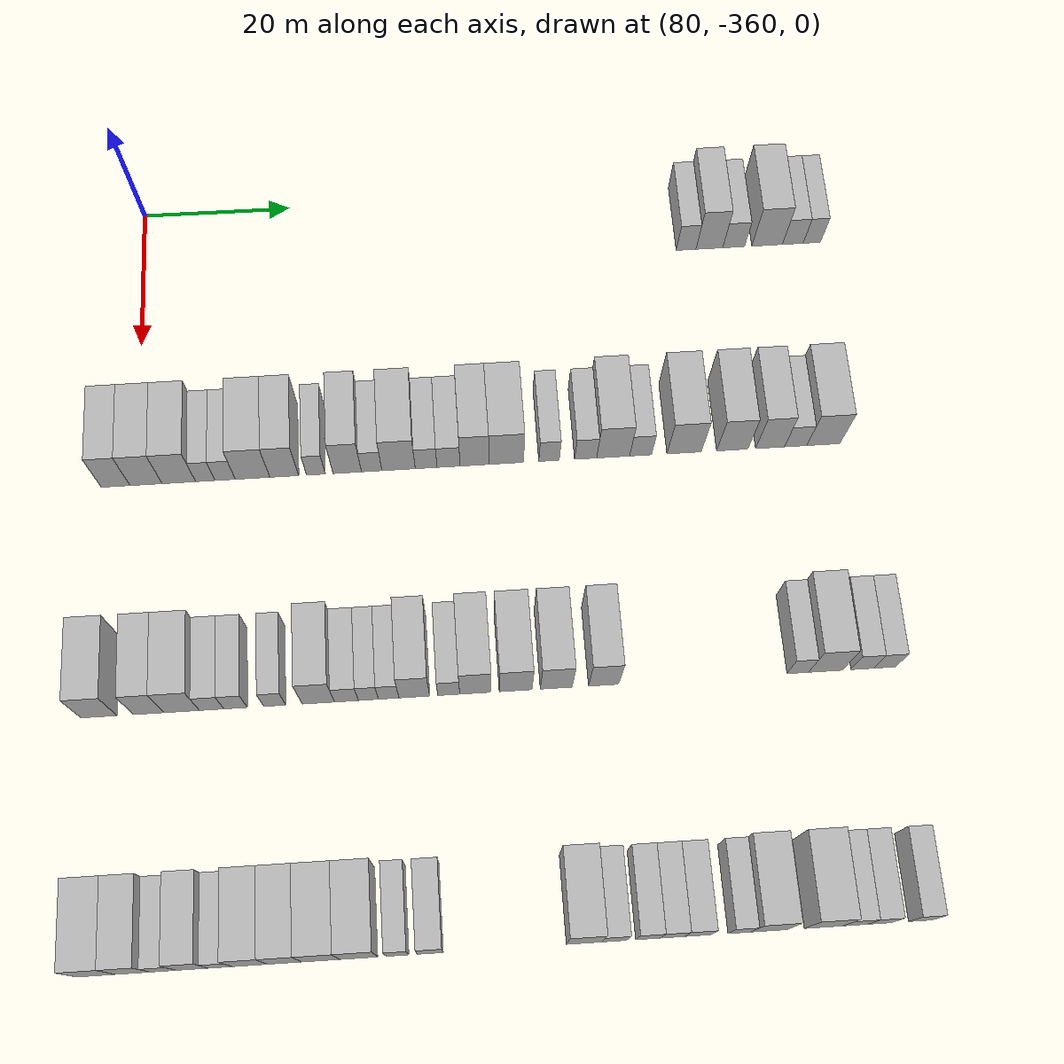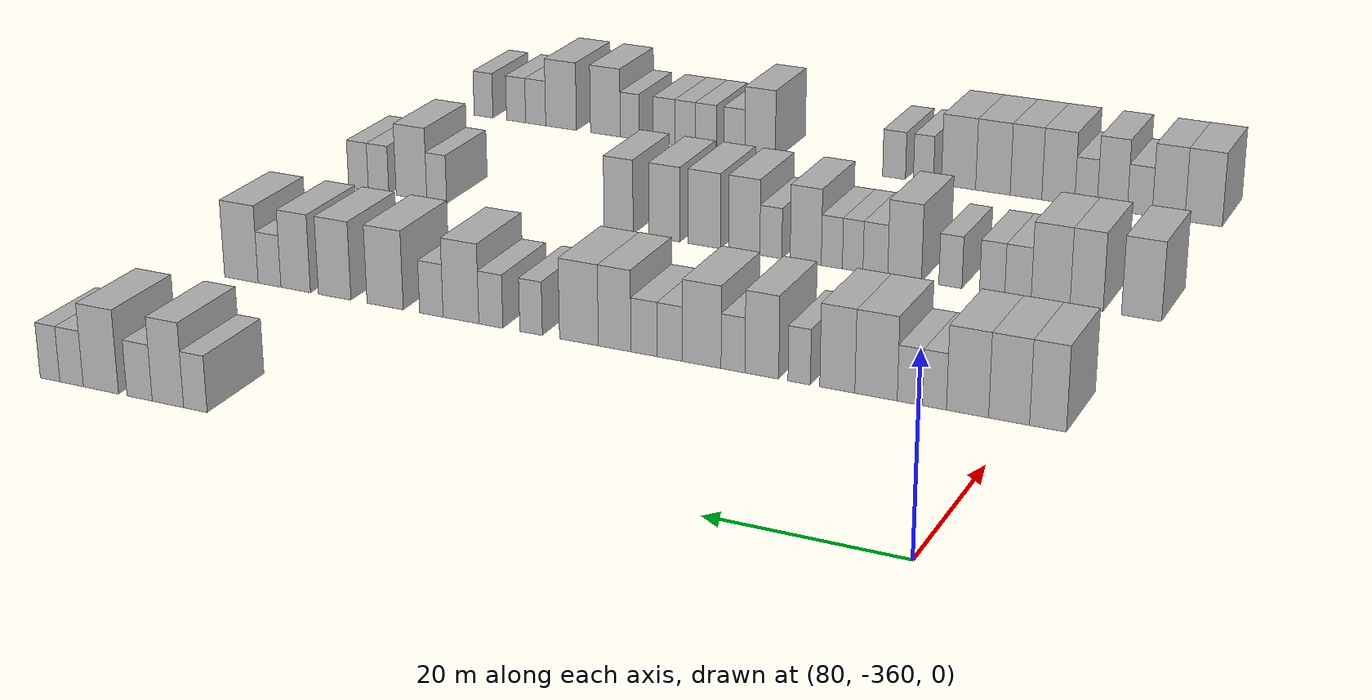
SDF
<sdf version="1.6">
 <world name="default">
  <model name="building_505">
   <static>1</static>
   <pose>85.0000 -286.0352 0 0.000000 0.000000 0.000000</pose>
   <link name="link">
    <pose>0 0 3.00 0 0 0</pose>
    <collision name="collision"><geometry><box><size>10.0000 2.7258 6.0000</size></box></geometry></collision>
    <visual name="visual">
     <cast_shadows>0</cast_shadows>
     <geometry><box><size>10.0000 2.7258 6.0000</size></box></geometry>
     <material>
      <script>
       <uri>model://HANNAS_wall/materials/scripts</uri>
       <uri>model://HANNAS_wall/materials/textures</uri>
       <name>vrc/HANNAS_wall</name>
      </script>
     </material>
    </visual>
   </link>
  </model>
  <model name="building_506">
   <static>1</static>
   <pose>85.0000 -282.8287 0 0.000000 0.000000 0.000000</pose>
   <link name="link">
    <pose>0 0 4.50 0 0 0</pose>
    <collision name="collision"><geometry><box><size>10.0000 3.6872 9.0000</size></box></geometry></collision>
    <visual name="visual">
     <cast_shadows>0</cast_shadows>
     <geometry><box><size>10.0000 3.6872 9.0000</size></box></geometry>
     <material>
      <script>
       <uri>model://HANNAS_wall/materials/scripts</uri>
       <uri>model://HANNAS_wall/materials/textures</uri>
       <name>vrc/HANNAS_wall</name>
      </script>
     </material>
    </visual>
   </link>
  </model>
  <model name="building_507">
   <static>1</static>
   <pose>85.0000 -279.4864 0 0.000000 0.000000 0.000000</pose>
   <link name="link">
    <pose>0 0 3.00 0 0 0</pose>
    <collision name="collision"><geometry><box><size>10.0000 2.9975 6.0000</size></box></geometry></collision>
    <visual name="visual">
     <cast_shadows>0</cast_shadows>
     <geometry><box><size>10.0000 2.9975 6.0000</size></box></geometry>
     <material>
      <script>
       <uri>model://HANNAS_wall/materials/scripts</uri>
       <uri>model://HANNAS_wall/materials/textures</uri>
       <name>vrc/HANNAS_wall</name>
      </script>
     </material>
    </visual>
   </link>
  </model>
  <model name="building_508">
   <static>1</static>
   <pose>85.0000 -274.8727 0 0.000000 0.000000 0.000000</pose>
   <link name="link">
    <pose>0 0 4.50 0 0 0</pose>
    <collision name="collision"><geometry><box><size>10.0000 4.2300 9.0000</size></box></geometry></collision>
    <visual name="visual">
     <cast_shadows>0</cast_shadows>
     <geometry><box><size>10.0000 4.2300 9.0000</size></box></geometry>
     <material>
      <script>
       <uri>model://HANNAS_wall/materials/scripts</uri>
       <uri>model://HANNAS_wall/materials/textures</uri>
       <name>vrc/HANNAS_wall</name>
      </script>
     </material>
    </visual>
   </link>
  </model>
  <model name="building_509">
   <static>1</static>
   <pose>85.0000 -271.3308 0 0.000000 0.000000 0.000000</pose>
   <link name="link">
    <pose>0 0 3.00 0 0 0</pose>
    <collision name="collision"><geometry><box><size>10.0000 2.8537 6.0000</size></box></geometry></collision>
    <visual name="visual">
     <cast_shadows>0</cast_shadows>
     <geometry><box><size>10.0000 2.8537 6.0000</size></box></geometry>
     <material>
      <script>
       <uri>model://HANNAS_wall/materials/scripts</uri>
       <uri>model://HANNAS_wall/materials/textures</uri>
       <name>vrc/HANNAS_wall</name>
      </script>
     </material>
    </visual>
   </link>
  </model>
  <model name="building_510">
   <static>1</static>
   <pose>85.0000 -268.7031 0 0.000000 0.000000 0.000000</pose>
   <link name="link">
    <pose>0 0 3.00 0 0 0</pose>
    <collision name="collision"><geometry><box><size>10.0000 2.4017 6.0000</size></box></geometry></collision>
    <visual name="visual">
     <cast_shadows>0</cast_shadows>
     <geometry><box><size>10.0000 2.4017 6.0000</size></box></geometry>
     <material>
      <script>
       <uri>model://HANNAS_wall/materials/scripts</uri>
       <uri>model://HANNAS_wall/materials/textures</uri>
       <name>vrc/HANNAS_wall</name>
      </script>
     </material>
    </visual>
   </link>
  </model>
  <model name="building_718">
   <static>1</static>
   <pose>115.0000 -362.9708 0 0.000000 0.000000 0.000000</pose>
   <link name="link">
    <pose>0 0 4.50 0 0 0</pose>
    <collision name="collision"><geometry><box><size>10.0000 3.6673 9.0000</size></box></geometry></collision>
    <visual name="visual">
     <cast_shadows>0</cast_shadows>
     <geometry><box><size>10.0000 3.6673 9.0000</size></box></geometry>
     <material>
      <script>
       <uri>model://HANNAS_wall/materials/scripts</uri>
       <uri>model://HANNAS_wall/materials/textures</uri>
       <name>vrc/HANNAS_wall</name>
      </script>
     </material>
    </visual>
   </link>
  </model>
  <model name="building_719">
   <static>1</static>
   <pose>115.0000 -359.0785 0 0.000000 0.000000 0.000000</pose>
   <link name="link">
    <pose>0 0 4.50 0 0 0</pose>
    <collision name="collision"><geometry><box><size>10.0000 4.1173 9.0000</size></box></geometry></collision>
    <visual name="visual">
     <cast_shadows>0</cast_shadows>
     <geometry><box><size>10.0000 4.1173 9.0000</size></box></geometry>
     <material>
      <script>
       <uri>model://HANNAS_wall/materials/scripts</uri>
       <uri>model://HANNAS_wall/materials/textures</uri>
       <name>vrc/HANNAS_wall</name>
      </script>
     </material>
    </visual>
   </link>
  </model>
  <model name="building_720">
   <static>1</static>
   <pose>115.0000 -354.8731 0 0.000000 0.000000 0.000000</pose>
   <link name="link">
    <pose>0 0 4.50 0 0 0</pose>
    <collision name="collision"><geometry><box><size>10.0000 4.2933 9.0000</size></box></geometry></collision>
    <visual name="visual">
     <cast_shadows>0</cast_shadows>
     <geometry><box><size>10.0000 4.2933 9.0000</size></box></geometry>
     <material>
      <script>
       <uri>model://HANNAS_wall/materials/scripts</uri>
       <uri>model://HANNAS_wall/materials/textures</uri>
       <name>vrc/HANNAS_wall</name>
      </script>
     </material>
    </visual>
   </link>
  </model>
  <model name="building_721">
   <static>1</static>
   <pose>115.0000 -351.4771 0 0.000000 0.000000 0.000000</pose>
   <link name="link">
    <pose>0 0 3.00 0 0 0</pose>
    <collision name="collision"><geometry><box><size>10.0000 2.4988 6.0000</size></box></geometry></collision>
    <visual name="visual">
     <cast_shadows>0</cast_shadows>
     <geometry><box><size>10.0000 2.4988 6.0000</size></box></geometry>
     <material>
      <script>
       <uri>model://HANNAS_wall/materials/scripts</uri>
       <uri>model://HANNAS_wall/materials/textures</uri>
       <name>vrc/HANNAS_wall</name>
      </script>
     </material>
    </visual>
   </link>
  </model>
  <model name="building_722">
   <static>1</static>
   <pose>115.0000 -348.9351 0 0.000000 0.000000 0.000000</pose>
   <link name="link">
    <pose>0 0 3.00 0 0 0</pose>
    <collision name="collision"><geometry><box><size>10.0000 2.5853 6.0000</size></box></geometry></collision>
    <visual name="visual">
     <cast_shadows>0</cast_shadows>
     <geometry><box><size>10.0000 2.5853 6.0000</size></box></geometry>
     <material>
      <script>
       <uri>model://HANNAS_wall/materials/scripts</uri>
       <uri>model://HANNAS_wall/materials/textures</uri>
       <name>vrc/HANNAS_wall</name>
      </script>
     </material>
    </visual>
   </link>
  </model>
  <model name="building_723">
   <static>1</static>
   <pose>115.0000 -345.4215 0 0.000000 0.000000 0.000000</pose>
   <link name="link">
    <pose>0 0 4.50 0 0 0</pose>
    <collision name="collision"><geometry><box><size>10.0000 4.4419 9.0000</size></box></geometry></collision>
    <visual name="visual">
     <cast_shadows>0</cast_shadows>
     <geometry><box><size>10.0000 4.4419 9.0000</size></box></geometry>
     <material>
      <script>
       <uri>model://HANNAS_wall/materials/scripts</uri>
       <uri>model://HANNAS_wall/materials/textures</uri>
       <name>vrc/HANNAS_wall</name>
      </script>
     </material>
    </visual>
   </link>
  </model>
  <model name="building_724">
   <static>1</static>
   <pose>115.0000 -341.3399 0 0.000000 0.000000 0.000000</pose>
   <link name="link">
    <pose>0 0 4.50 0 0 0</pose>
    <collision name="collision"><geometry><box><size>10.0000 3.7213 9.0000</size></box></geometry></collision>
    <visual name="visual">
     <cast_shadows>0</cast_shadows>
     <geometry><box><size>10.0000 3.7213 9.0000</size></box></geometry>
     <material>
      <script>
       <uri>model://HANNAS_wall/materials/scripts</uri>
       <uri>model://HANNAS_wall/materials/textures</uri>
       <name>vrc/HANNAS_wall</name>
      </script>
     </material>
    </visual>
   </link>
  </model>
  <model name="building_725">
   <static>1</static>
   <pose>115.0000 -337.2756 0 0.000000 0.000000 0.000000</pose>
   <link name="link">
    <pose>0 0 3.00 0 0 0</pose>
    <collision name="collision"><geometry><box><size>10.0000 2.4072 6.0000</size></box></geometry></collision>
    <visual name="visual">
     <cast_shadows>0</cast_shadows>
     <geometry><box><size>10.0000 2.4072 6.0000</size></box></geometry>
     <material>
      <script>
       <uri>model://HANNAS_wall/materials/scripts</uri>
       <uri>model://HANNAS_wall/materials/textures</uri>
       <name>vrc/HANNAS_wall</name>
      </script>
     </material>
    </visual>
   </link>
  </model>
  <model name="building_726">
   <static>1</static>
   <pose>115.0000 -333.2421 0 0.000000 0.000000 0.000000</pose>
   <link name="link">
    <pose>0 0 4.50 0 0 0</pose>
    <collision name="collision"><geometry><box><size>10.0000 3.6598 9.0000</size></box></geometry></collision>
    <visual name="visual">
     <cast_shadows>0</cast_shadows>
     <geometry><box><size>10.0000 3.6598 9.0000</size></box></geometry>
     <material>
      <script>
       <uri>model://HANNAS_wall/materials/scripts</uri>
       <uri>model://HANNAS_wall/materials/textures</uri>
       <name>vrc/HANNAS_wall</name>
      </script>
     </material>
    </visual>
   </link>
  </model>
  <model name="building_727">
   <static>1</static>
   <pose>115.0000 -330.0957 0 0.000000 0.000000 0.000000</pose>
   <link name="link">
    <pose>0 0 3.00 0 0 0</pose>
    <collision name="collision"><geometry><box><size>10.0000 2.6330 6.0000</size></box></geometry></collision>
    <visual name="visual">
     <cast_shadows>0</cast_shadows>
     <geometry><box><size>10.0000 2.6330 6.0000</size></box></geometry>
     <material>
      <script>
       <uri>model://HANNAS_wall/materials/scripts</uri>
       <uri>model://HANNAS_wall/materials/textures</uri>
       <name>vrc/HANNAS_wall</name>
      </script>
     </material>
    </visual>
   </link>
  </model>
  <model name="building_728">
   <static>1</static>
   <pose>115.0000 -326.6280 0 0.000000 0.000000 0.000000</pose>
   <link name="link">
    <pose>0 0 4.50 0 0 0</pose>
    <collision name="collision"><geometry><box><size>10.0000 4.3024 9.0000</size></box></geometry></collision>
    <visual name="visual">
     <cast_shadows>0</cast_shadows>
     <geometry><box><size>10.0000 4.3024 9.0000</size></box></geometry>
     <material>
      <script>
       <uri>model://HANNAS_wall/materials/scripts</uri>
       <uri>model://HANNAS_wall/materials/textures</uri>
       <name>vrc/HANNAS_wall</name>
      </script>
     </material>
    </visual>
   </link>
  </model>
  <model name="building_729">
   <static>1</static>
   <pose>115.0000 -323.0731 0 0.000000 0.000000 0.000000</pose>
   <link name="link">
    <pose>0 0 3.00 0 0 0</pose>
    <collision name="collision"><geometry><box><size>10.0000 2.8073 6.0000</size></box></geometry></collision>
    <visual name="visual">
     <cast_shadows>0</cast_shadows>
     <geometry><box><size>10.0000 2.8073 6.0000</size></box></geometry>
     <material>
      <script>
       <uri>model://HANNAS_wall/materials/scripts</uri>
       <uri>model://HANNAS_wall/materials/textures</uri>
       <name>vrc/HANNAS_wall</name>
      </script>
     </material>
    </visual>
   </link>
  </model>
  <model name="building_730">
   <static>1</static>
   <pose>115.0000 -320.1883 0 0.000000 0.000000 0.000000</pose>
   <link name="link">
    <pose>0 0 3.00 0 0 0</pose>
    <collision name="collision"><geometry><box><size>10.0000 2.9624 6.0000</size></box></geometry></collision>
    <visual name="visual">
     <cast_shadows>0</cast_shadows>
     <geometry><box><size>10.0000 2.9624 6.0000</size></box></geometry>
     <material>
      <script>
       <uri>model://HANNAS_wall/materials/scripts</uri>
       <uri>model://HANNAS_wall/materials/textures</uri>
       <name>vrc/HANNAS_wall</name>
      </script>
     </material>
    </visual>
   </link>
  </model>
  <model name="building_731">
   <static>1</static>
   <pose>115.0000 -316.8513 0 0.000000 0.000000 0.000000</pose>
   <link name="link">
    <pose>0 0 4.50 0 0 0</pose>
    <collision name="collision"><geometry><box><size>10.0000 3.7116 9.0000</size></box></geometry></collision>
    <visual name="visual">
     <cast_shadows>0</cast_shadows>
     <geometry><box><size>10.0000 3.7116 9.0000</size></box></geometry>
     <material>
      <script>
       <uri>model://HANNAS_wall/materials/scripts</uri>
       <uri>model://HANNAS_wall/materials/textures</uri>
       <name>vrc/HANNAS_wall</name>
      </script>
     </material>
    </visual>
   </link>
  </model>
  <model name="building_732">
   <static>1</static>
   <pose>115.0000 -312.7535 0 0.000000 0.000000 0.000000</pose>
   <link name="link">
    <pose>0 0 4.50 0 0 0</pose>
    <collision name="collision"><geometry><box><size>10.0000 4.4842 9.0000</size></box></geometry></collision>
    <visual name="visual">
     <cast_shadows>0</cast_shadows>
     <geometry><box><size>10.0000 4.4842 9.0000</size></box></geometry>
     <material>
      <script>
       <uri>model://HANNAS_wall/materials/scripts</uri>
       <uri>model://HANNAS_wall/materials/textures</uri>
       <name>vrc/HANNAS_wall</name>
      </script>
     </material>
    </visual>
   </link>
  </model>
  <model name="building_733">
   <static>1</static>
   <pose>115.0000 -307.1903 0 0.000000 0.000000 0.000000</pose>
   <link name="link">
    <pose>0 0 3.00 0 0 0</pose>
    <collision name="collision"><geometry><box><size>10.0000 2.6422 6.0000</size></box></geometry></collision>
    <visual name="visual">
     <cast_shadows>0</cast_shadows>
     <geometry><box><size>10.0000 2.6422 6.0000</size></box></geometry>
     <material>
      <script>
       <uri>model://HANNAS_wall/materials/scripts</uri>
       <uri>model://HANNAS_wall/materials/textures</uri>
       <name>vrc/HANNAS_wall</name>
      </script>
     </material>
    </visual>
   </link>
  </model>
  <model name="building_734">
   <static>1</static>
   <pose>115.0000 -302.4409 0 0.000000 0.000000 0.000000</pose>
   <link name="link">
    <pose>0 0 3.00 0 0 0</pose>
    <collision name="collision"><geometry><box><size>10.0000 2.8566 6.0000</size></box></geometry></collision>
    <visual name="visual">
     <cast_shadows>0</cast_shadows>
     <geometry><box><size>10.0000 2.8566 6.0000</size></box></geometry>
     <material>
      <script>
       <uri>model://HANNAS_wall/materials/scripts</uri>
       <uri>model://HANNAS_wall/materials/textures</uri>
       <name>vrc/HANNAS_wall</name>
      </script>
     </material>
    </visual>
   </link>
  </model>
  <model name="building_735">
   <static>1</static>
   <pose>115.0000 -298.8689 0 0.000000 0.000000 0.000000</pose>
   <link name="link">
    <pose>0 0 4.50 0 0 0</pose>
    <collision name="collision"><geometry><box><size>10.0000 4.2876 9.0000</size></box></geometry></collision>
    <visual name="visual">
     <cast_shadows>0</cast_shadows>
     <geometry><box><size>10.0000 4.2876 9.0000</size></box></geometry>
     <material>
      <script>
       <uri>model://HANNAS_wall/materials/scripts</uri>
       <uri>model://HANNAS_wall/materials/textures</uri>
       <name>vrc/HANNAS_wall</name>
      </script>
     </material>
    </visual>
   </link>
  </model>
  <model name="building_736">
   <static>1</static>
   <pose>115.0000 -295.3025 0 0.000000 0.000000 0.000000</pose>
   <link name="link">
    <pose>0 0 3.00 0 0 0</pose>
    <collision name="collision"><geometry><box><size>10.0000 2.8450 6.0000</size></box></geometry></collision>
    <visual name="visual">
     <cast_shadows>0</cast_shadows>
     <geometry><box><size>10.0000 2.8450 6.0000</size></box></geometry>
     <material>
      <script>
       <uri>model://HANNAS_wall/materials/scripts</uri>
       <uri>model://HANNAS_wall/materials/textures</uri>
       <name>vrc/HANNAS_wall</name>
      </script>
     </material>
    </visual>
   </link>
  </model>
  <model name="building_737">
   <static>1</static>
   <pose>115.0000 -289.6438 0 0.000000 0.000000 0.000000</pose>
   <link name="link">
    <pose>0 0 4.50 0 0 0</pose>
    <collision name="collision"><geometry><box><size>10.0000 4.4725 9.0000</size></box></geometry></collision>
    <visual name="visual">
     <cast_shadows>0</cast_shadows>
     <geometry><box><size>10.0000 4.4725 9.0000</size></box></geometry>
     <material>
      <script>
       <uri>model://HANNAS_wall/materials/scripts</uri>
       <uri>model://HANNAS_wall/materials/textures</uri>
       <name>vrc/HANNAS_wall</name>
      </script>
     </material>
    </visual>
   </link>
  </model>
  <model name="building_738">
   <static>1</static>
   <pose>115.0000 -283.3665 0 0.000000 0.000000 0.000000</pose>
   <link name="link">
    <pose>0 0 4.50 0 0 0</pose>
    <collision name="collision"><geometry><box><size>10.0000 4.0819 9.0000</size></box></geometry></collision>
    <visual name="visual">
     <cast_shadows>0</cast_shadows>
     <geometry><box><size>10.0000 4.0819 9.0000</size></box></geometry>
     <material>
      <script>
       <uri>model://HANNAS_wall/materials/scripts</uri>
       <uri>model://HANNAS_wall/materials/textures</uri>
       <name>vrc/HANNAS_wall</name>
      </script>
     </material>
    </visual>
   </link>
  </model>
  <model name="building_739">
   <static>1</static>
   <pose>115.0000 -278.4479 0 0.000000 0.000000 0.000000</pose>
   <link name="link">
    <pose>0 0 4.50 0 0 0</pose>
    <collision name="collision"><geometry><box><size>10.0000 3.7554 9.0000</size></box></geometry></collision>
    <visual name="visual">
     <cast_shadows>0</cast_shadows>
     <geometry><box><size>10.0000 3.7554 9.0000</size></box></geometry>
     <material>
      <script>
       <uri>model://HANNAS_wall/materials/scripts</uri>
       <uri>model://HANNAS_wall/materials/textures</uri>
       <name>vrc/HANNAS_wall</name>
      </script>
     </material>
    </visual>
   </link>
  </model>
  <model name="building_740">
   <static>1</static>
   <pose>115.0000 -275.1106 0 0.000000 0.000000 0.000000</pose>
   <link name="link">
    <pose>0 0 3.00 0 0 0</pose>
    <collision name="collision"><geometry><box><size>10.0000 2.9191 6.0000</size></box></geometry></collision>
    <visual name="visual">
     <cast_shadows>0</cast_shadows>
     <geometry><box><size>10.0000 2.9191 6.0000</size></box></geometry>
     <material>
      <script>
       <uri>model://HANNAS_wall/materials/scripts</uri>
       <uri>model://HANNAS_wall/materials/textures</uri>
       <name>vrc/HANNAS_wall</name>
      </script>
     </material>
    </visual>
   </link>
  </model>
  <model name="building_741">
   <static>1</static>
   <pose>115.0000 -271.4819 0 0.000000 0.000000 0.000000</pose>
   <link name="link">
    <pose>0 0 4.50 0 0 0</pose>
    <collision name="collision"><geometry><box><size>10.0000 4.3383 9.0000</size></box></geometry></collision>
    <visual name="visual">
     <cast_shadows>0</cast_shadows>
     <geometry><box><size>10.0000 4.3383 9.0000</size></box></geometry>
     <material>
      <script>
       <uri>model://HANNAS_wall/materials/scripts</uri>
       <uri>model://HANNAS_wall/materials/textures</uri>
       <name>vrc/HANNAS_wall</name>
      </script>
     </material>
    </visual>
   </link>
  </model>
  <model name="building_947">
   <static>1</static>
   <pose>145.0000 -364.1305 0 0.000000 0.000000 0.000000</pose>
   <link name="link">
    <pose>0 0 4.50 0 0 0</pose>
    <collision name="collision"><geometry><box><size>10.0000 4.3447 9.0000</size></box></geometry></collision>
    <visual name="visual">
     <cast_shadows>0</cast_shadows>
     <geometry><box><size>10.0000 4.3447 9.0000</size></box></geometry>
     <material>
      <script>
       <uri>model://HANNAS_wall/materials/scripts</uri>
       <uri>model://HANNAS_wall/materials/textures</uri>
       <name>vrc/HANNAS_wall</name>
      </script>
     </material>
    </visual>
   </link>
  </model>
  <model name="building_948">
   <static>1</static>
   <pose>145.0000 -358.1437 0 0.000000 0.000000 0.000000</pose>
   <link name="link">
    <pose>0 0 4.50 0 0 0</pose>
    <collision name="collision"><geometry><box><size>10.0000 3.6288 9.0000</size></box></geometry></collision>
    <visual name="visual">
     <cast_shadows>0</cast_shadows>
     <geometry><box><size>10.0000 3.6288 9.0000</size></box></geometry>
     <material>
      <script>
       <uri>model://HANNAS_wall/materials/scripts</uri>
       <uri>model://HANNAS_wall/materials/textures</uri>
       <name>vrc/HANNAS_wall</name>
      </script>
     </material>
    </visual>
   </link>
  </model>
  <model name="building_949">
   <static>1</static>
   <pose>145.0000 -354.1724 0 0.000000 0.000000 0.000000</pose>
   <link name="link">
    <pose>0 0 4.50 0 0 0</pose>
    <collision name="collision"><geometry><box><size>10.0000 4.3138 9.0000</size></box></geometry></collision>
    <visual name="visual">
     <cast_shadows>0</cast_shadows>
     <geometry><box><size>10.0000 4.3138 9.0000</size></box></geometry>
     <material>
      <script>
       <uri>model://HANNAS_wall/materials/scripts</uri>
       <uri>model://HANNAS_wall/materials/textures</uri>
       <name>vrc/HANNAS_wall</name>
      </script>
     </material>
    </visual>
   </link>
  </model>
  <model name="building_950">
   <static>1</static>
   <pose>145.0000 -350.5336 0 0.000000 0.000000 0.000000</pose>
   <link name="link">
    <pose>0 0 3.00 0 0 0</pose>
    <collision name="collision"><geometry><box><size>10.0000 2.9639 6.0000</size></box></geometry></collision>
    <visual name="visual">
     <cast_shadows>0</cast_shadows>
     <geometry><box><size>10.0000 2.9639 6.0000</size></box></geometry>
     <material>
      <script>
       <uri>model://HANNAS_wall/materials/scripts</uri>
       <uri>model://HANNAS_wall/materials/textures</uri>
       <name>vrc/HANNAS_wall</name>
      </script>
     </material>
    </visual>
   </link>
  </model>
  <model name="building_951">
   <static>1</static>
   <pose>145.0000 -347.6311 0 0.000000 0.000000 0.000000</pose>
   <link name="link">
    <pose>0 0 3.00 0 0 0</pose>
    <collision name="collision"><geometry><box><size>10.0000 2.8411 6.0000</size></box></geometry></collision>
    <visual name="visual">
     <cast_shadows>0</cast_shadows>
     <geometry><box><size>10.0000 2.8411 6.0000</size></box></geometry>
     <material>
      <script>
       <uri>model://HANNAS_wall/materials/scripts</uri>
       <uri>model://HANNAS_wall/materials/textures</uri>
       <name>vrc/HANNAS_wall</name>
      </script>
     </material>
    </visual>
   </link>
  </model>
  <model name="building_952">
   <static>1</static>
   <pose>145.0000 -342.8889 0 0.000000 0.000000 0.000000</pose>
   <link name="link">
    <pose>0 0 3.00 0 0 0</pose>
    <collision name="collision"><geometry><box><size>10.0000 2.6432 6.0000</size></box></geometry></collision>
    <visual name="visual">
     <cast_shadows>0</cast_shadows>
     <geometry><box><size>10.0000 2.6432 6.0000</size></box></geometry>
     <material>
      <script>
       <uri>model://HANNAS_wall/materials/scripts</uri>
       <uri>model://HANNAS_wall/materials/textures</uri>
       <name>vrc/HANNAS_wall</name>
      </script>
     </material>
    </visual>
   </link>
  </model>
  <model name="building_953">
   <static>1</static>
   <pose>145.0000 -337.6079 0 0.000000 0.000000 0.000000</pose>
   <link name="link">
    <pose>0 0 4.50 0 0 0</pose>
    <collision name="collision"><geometry><box><size>10.0000 3.9187 9.0000</size></box></geometry></collision>
    <visual name="visual">
     <cast_shadows>0</cast_shadows>
     <geometry><box><size>10.0000 3.9187 9.0000</size></box></geometry>
     <material>
      <script>
       <uri>model://HANNAS_wall/materials/scripts</uri>
       <uri>model://HANNAS_wall/materials/textures</uri>
       <name>vrc/HANNAS_wall</name>
      </script>
     </material>
    </visual>
   </link>
  </model>
  <model name="building_954">
   <static>1</static>
   <pose>145.0000 -334.1978 0 0.000000 0.000000 0.000000</pose>
   <link name="link">
    <pose>0 0 3.00 0 0 0</pose>
    <collision name="collision"><geometry><box><size>10.0000 2.9016 6.0000</size></box></geometry></collision>
    <visual name="visual">
     <cast_shadows>0</cast_shadows>
     <geometry><box><size>10.0000 2.9016 6.0000</size></box></geometry>
     <material>
      <script>
       <uri>model://HANNAS_wall/materials/scripts</uri>
       <uri>model://HANNAS_wall/materials/textures</uri>
       <name>vrc/HANNAS_wall</name>
      </script>
     </material>
    </visual>
   </link>
  </model>
  <model name="building_955">
   <static>1</static>
   <pose>145.0000 -331.5323 0 0.000000 0.000000 0.000000</pose>
   <link name="link">
    <pose>0 0 3.00 0 0 0</pose>
    <collision name="collision"><geometry><box><size>10.0000 2.4293 6.0000</size></box></geometry></collision>
    <visual name="visual">
     <cast_shadows>0</cast_shadows>
     <geometry><box><size>10.0000 2.4293 6.0000</size></box></geometry>
     <material>
      <script>
       <uri>model://HANNAS_wall/materials/scripts</uri>
       <uri>model://HANNAS_wall/materials/textures</uri>
       <name>vrc/HANNAS_wall</name>
      </script>
     </material>
    </visual>
   </link>
  </model>
  <model name="building_956">
   <static>1</static>
   <pose>145.0000 -329.0621 0 0.000000 0.000000 0.000000</pose>
   <link name="link">
    <pose>0 0 3.00 0 0 0</pose>
    <collision name="collision"><geometry><box><size>10.0000 2.5111 6.0000</size></box></geometry></collision>
    <visual name="visual">
     <cast_shadows>0</cast_shadows>
     <geometry><box><size>10.0000 2.5111 6.0000</size></box></geometry>
     <material>
      <script>
       <uri>model://HANNAS_wall/materials/scripts</uri>
       <uri>model://HANNAS_wall/materials/textures</uri>
       <name>vrc/HANNAS_wall</name>
      </script>
     </material>
    </visual>
   </link>
  </model>
  <model name="building_957">
   <static>1</static>
   <pose>145.0000 -325.9454 0 0.000000 0.000000 0.000000</pose>
   <link name="link">
    <pose>0 0 4.50 0 0 0</pose>
    <collision name="collision"><geometry><box><size>10.0000 3.7223 9.0000</size></box></geometry></collision>
    <visual name="visual">
     <cast_shadows>0</cast_shadows>
     <geometry><box><size>10.0000 3.7223 9.0000</size></box></geometry>
     <material>
      <script>
       <uri>model://HANNAS_wall/materials/scripts</uri>
       <uri>model://HANNAS_wall/materials/textures</uri>
       <name>vrc/HANNAS_wall</name>
      </script>
     </material>
    </visual>
   </link>
  </model>
  <model name="building_958">
   <static>1</static>
   <pose>145.0000 -321.7526 0 0.000000 0.000000 0.000000</pose>
   <link name="link">
    <pose>0 0 3.00 0 0 0</pose>
    <collision name="collision"><geometry><box><size>10.0000 2.6633 6.0000</size></box></geometry></collision>
    <visual name="visual">
     <cast_shadows>0</cast_shadows>
     <geometry><box><size>10.0000 2.6633 6.0000</size></box></geometry>
     <material>
      <script>
       <uri>model://HANNAS_wall/materials/scripts</uri>
       <uri>model://HANNAS_wall/materials/textures</uri>
       <name>vrc/HANNAS_wall</name>
      </script>
     </material>
    </visual>
   </link>
  </model>
  <model name="building_959">
   <static>1</static>
   <pose>145.0000 -318.5139 0 0.000000 0.000000 0.000000</pose>
   <link name="link">
    <pose>0 0 4.50 0 0 0</pose>
    <collision name="collision"><geometry><box><size>10.0000 3.8142 9.0000</size></box></geometry></collision>
    <visual name="visual">
     <cast_shadows>0</cast_shadows>
     <geometry><box><size>10.0000 3.8142 9.0000</size></box></geometry>
     <material>
      <script>
       <uri>model://HANNAS_wall/materials/scripts</uri>
       <uri>model://HANNAS_wall/materials/textures</uri>
       <name>vrc/HANNAS_wall</name>
      </script>
     </material>
    </visual>
   </link>
  </model>
  <model name="building_960">
   <static>1</static>
   <pose>145.0000 -313.6026 0 0.000000 0.000000 0.000000</pose>
   <link name="link">
    <pose>0 0 4.50 0 0 0</pose>
    <collision name="collision"><geometry><box><size>10.0000 4.0083 9.0000</size></box></geometry></collision>
    <visual name="visual">
     <cast_shadows>0</cast_shadows>
     <geometry><box><size>10.0000 4.0083 9.0000</size></box></geometry>
     <material>
      <script>
       <uri>model://HANNAS_wall/materials/scripts</uri>
       <uri>model://HANNAS_wall/materials/textures</uri>
       <name>vrc/HANNAS_wall</name>
      </script>
     </material>
    </visual>
   </link>
  </model>
  <model name="building_961">
   <static>1</static>
   <pose>145.0000 -308.6496 0 0.000000 0.000000 0.000000</pose>
   <link name="link">
    <pose>0 0 4.50 0 0 0</pose>
    <collision name="collision"><geometry><box><size>10.0000 3.8978 9.0000</size></box></geometry></collision>
    <visual name="visual">
     <cast_shadows>0</cast_shadows>
     <geometry><box><size>10.0000 3.8978 9.0000</size></box></geometry>
     <material>
      <script>
       <uri>model://HANNAS_wall/materials/scripts</uri>
       <uri>model://HANNAS_wall/materials/textures</uri>
       <name>vrc/HANNAS_wall</name>
      </script>
     </material>
    </visual>
   </link>
  </model>
  <model name="building_962">
   <static>1</static>
   <pose>145.0000 -302.8543 0 0.000000 0.000000 0.000000</pose>
   <link name="link">
    <pose>0 0 4.50 0 0 0</pose>
    <collision name="collision"><geometry><box><size>10.0000 3.6928 9.0000</size></box></geometry></collision>
    <visual name="visual">
     <cast_shadows>0</cast_shadows>
     <geometry><box><size>10.0000 3.6928 9.0000</size></box></geometry>
     <material>
      <script>
       <uri>model://HANNAS_wall/materials/scripts</uri>
       <uri>model://HANNAS_wall/materials/textures</uri>
       <name>vrc/HANNAS_wall</name>
      </script>
     </material>
    </visual>
   </link>
  </model>
  <model name="building_963">
   <static>1</static>
   <pose>145.0000 -278.9799 0 0.000000 0.000000 0.000000</pose>
   <link name="link">
    <pose>0 0 3.00 0 0 0</pose>
    <collision name="collision"><geometry><box><size>10.0000 2.6853 6.0000</size></box></geometry></collision>
    <visual name="visual">
     <cast_shadows>0</cast_shadows>
     <geometry><box><size>10.0000 2.6853 6.0000</size></box></geometry>
     <material>
      <script>
       <uri>model://HANNAS_wall/materials/scripts</uri>
       <uri>model://HANNAS_wall/materials/textures</uri>
       <name>vrc/HANNAS_wall</name>
      </script>
     </material>
    </visual>
   </link>
  </model>
  <model name="building_964">
   <static>1</static>
   <pose>145.0000 -275.5416 0 0.000000 0.000000 0.000000</pose>
   <link name="link">
    <pose>0 0 4.50 0 0 0</pose>
    <collision name="collision"><geometry><box><size>10.0000 4.1913 9.0000</size></box></geometry></collision>
    <visual name="visual">
     <cast_shadows>0</cast_shadows>
     <geometry><box><size>10.0000 4.1913 9.0000</size></box></geometry>
     <material>
      <script>
       <uri>model://HANNAS_wall/materials/scripts</uri>
       <uri>model://HANNAS_wall/materials/textures</uri>
       <name>vrc/HANNAS_wall</name>
      </script>
     </material>
    </visual>
   </link>
  </model>
  <model name="building_965">
   <static>1</static>
   <pose>145.0000 -271.0324 0 0.000000 0.000000 0.000000</pose>
   <link name="link">
    <pose>0 0 3.00 0 0 0</pose>
    <collision name="collision"><geometry><box><size>10.0000 2.8271 6.0000</size></box></geometry></collision>
    <visual name="visual">
     <cast_shadows>0</cast_shadows>
     <geometry><box><size>10.0000 2.8271 6.0000</size></box></geometry>
     <material>
      <script>
       <uri>model://HANNAS_wall/materials/scripts</uri>
       <uri>model://HANNAS_wall/materials/textures</uri>
       <name>vrc/HANNAS_wall</name>
      </script>
     </material>
    </visual>
   </link>
  </model>
  <model name="building_966">
   <static>1</static>
   <pose>145.0000 -268.2549 0 0.000000 0.000000 0.000000</pose>
   <link name="link">
    <pose>0 0 3.00 0 0 0</pose>
    <collision name="collision"><geometry><box><size>10.0000 2.7279 6.0000</size></box></geometry></collision>
    <visual name="visual">
     <cast_shadows>0</cast_shadows>
     <geometry><box><size>10.0000 2.7279 6.0000</size></box></geometry>
     <material>
      <script>
       <uri>model://HANNAS_wall/materials/scripts</uri>
       <uri>model://HANNAS_wall/materials/textures</uri>
       <name>vrc/HANNAS_wall</name>
      </script>
     </material>
    </visual>
   </link>
  </model>
  <model name="building_1167">
   <static>1</static>
   <pose>175.0000 -363.4498 0 0.000000 0.000000 0.000000</pose>
   <link name="link">
    <pose>0 0 4.50 0 0 0</pose>
    <collision name="collision"><geometry><box><size>10.0000 4.3857 9.0000</size></box></geometry></collision>
    <visual name="visual">
     <cast_shadows>0</cast_shadows>
     <geometry><box><size>10.0000 4.3857 9.0000</size></box></geometry>
     <material>
      <script>
       <uri>model://HANNAS_wall/materials/scripts</uri>
       <uri>model://HANNAS_wall/materials/textures</uri>
       <name>vrc/HANNAS_wall</name>
      </script>
     </material>
    </visual>
   </link>
  </model>
  <model name="building_1168">
   <static>1</static>
   <pose>175.0000 -359.3168 0 0.000000 0.000000 0.000000</pose>
   <link name="link">
    <pose>0 0 4.50 0 0 0</pose>
    <collision name="collision"><geometry><box><size>10.0000 3.8802 9.0000</size></box></geometry></collision>
    <visual name="visual">
     <cast_shadows>0</cast_shadows>
     <geometry><box><size>10.0000 3.8802 9.0000</size></box></geometry>
     <material>
      <script>
       <uri>model://HANNAS_wall/materials/scripts</uri>
       <uri>model://HANNAS_wall/materials/textures</uri>
       <name>vrc/HANNAS_wall</name>
      </script>
     </material>
    </visual>
   </link>
  </model>
  <model name="building_1169">
   <static>1</static>
   <pose>175.0000 -355.8913 0 0.000000 0.000000 0.000000</pose>
   <link name="link">
    <pose>0 0 3.00 0 0 0</pose>
    <collision name="collision"><geometry><box><size>10.0000 2.9708 6.0000</size></box></geometry></collision>
    <visual name="visual">
     <cast_shadows>0</cast_shadows>
     <geometry><box><size>10.0000 2.9708 6.0000</size></box></geometry>
     <material>
      <script>
       <uri>model://HANNAS_wall/materials/scripts</uri>
       <uri>model://HANNAS_wall/materials/textures</uri>
       <name>vrc/HANNAS_wall</name>
      </script>
     </material>
    </visual>
   </link>
  </model>
  <model name="building_1170">
   <static>1</static>
   <pose>175.0000 -352.5927 0 0.000000 0.000000 0.000000</pose>
   <link name="link">
    <pose>0 0 4.50 0 0 0</pose>
    <collision name="collision"><geometry><box><size>10.0000 3.6265 9.0000</size></box></geometry></collision>
    <visual name="visual">
     <cast_shadows>0</cast_shadows>
     <geometry><box><size>10.0000 3.6265 9.0000</size></box></geometry>
     <material>
      <script>
       <uri>model://HANNAS_wall/materials/scripts</uri>
       <uri>model://HANNAS_wall/materials/textures</uri>
       <name>vrc/HANNAS_wall</name>
      </script>
     </material>
    </visual>
   </link>
  </model>
  <model name="building_1171">
   <static>1</static>
   <pose>175.0000 -349.4211 0 0.000000 0.000000 0.000000</pose>
   <link name="link">
    <pose>0 0 3.00 0 0 0</pose>
    <collision name="collision"><geometry><box><size>10.0000 2.7165 6.0000</size></box></geometry></collision>
    <visual name="visual">
     <cast_shadows>0</cast_shadows>
     <geometry><box><size>10.0000 2.7165 6.0000</size></box></geometry>
     <material>
      <script>
       <uri>model://HANNAS_wall/materials/scripts</uri>
       <uri>model://HANNAS_wall/materials/textures</uri>
       <name>vrc/HANNAS_wall</name>
      </script>
     </material>
    </visual>
   </link>
  </model>
  <model name="building_1172">
   <static>1</static>
   <pose>175.0000 -346.0522 0 0.000000 0.000000 0.000000</pose>
   <link name="link">
    <pose>0 0 4.50 0 0 0</pose>
    <collision name="collision"><geometry><box><size>10.0000 4.0213 9.0000</size></box></geometry></collision>
    <visual name="visual">
     <cast_shadows>0</cast_shadows>
     <geometry><box><size>10.0000 4.0213 9.0000</size></box></geometry>
     <material>
      <script>
       <uri>model://HANNAS_wall/materials/scripts</uri>
       <uri>model://HANNAS_wall/materials/textures</uri>
       <name>vrc/HANNAS_wall</name>
      </script>
     </material>
    </visual>
   </link>
  </model>
  <model name="building_1173">
   <static>1</static>
   <pose>175.0000 -342.0887 0 0.000000 0.000000 0.000000</pose>
   <link name="link">
    <pose>0 0 4.50 0 0 0</pose>
    <collision name="collision"><geometry><box><size>10.0000 3.9057 9.0000</size></box></geometry></collision>
    <visual name="visual">
     <cast_shadows>0</cast_shadows>
     <geometry><box><size>10.0000 3.9057 9.0000</size></box></geometry>
     <material>
      <script>
       <uri>model://HANNAS_wall/materials/scripts</uri>
       <uri>model://HANNAS_wall/materials/textures</uri>
       <name>vrc/HANNAS_wall</name>
      </script>
     </material>
    </visual>
   </link>
  </model>
  <model name="building_1174">
   <static>1</static>
   <pose>175.0000 -337.9801 0 0.000000 0.000000 0.000000</pose>
   <link name="link">
    <pose>0 0 4.50 0 0 0</pose>
    <collision name="collision"><geometry><box><size>10.0000 4.3116 9.0000</size></box></geometry></collision>
    <visual name="visual">
     <cast_shadows>0</cast_shadows>
     <geometry><box><size>10.0000 4.3116 9.0000</size></box></geometry>
     <material>
      <script>
       <uri>model://HANNAS_wall/materials/scripts</uri>
       <uri>model://HANNAS_wall/materials/textures</uri>
       <name>vrc/HANNAS_wall</name>
      </script>
     </material>
    </visual>
   </link>
  </model>
  <model name="building_1175">
   <static>1</static>
   <pose>175.0000 -333.6584 0 0.000000 0.000000 0.000000</pose>
   <link name="link">
    <pose>0 0 4.50 0 0 0</pose>
    <collision name="collision"><geometry><box><size>10.0000 4.3319 9.0000</size></box></geometry></collision>
    <visual name="visual">
     <cast_shadows>0</cast_shadows>
     <geometry><box><size>10.0000 4.3319 9.0000</size></box></geometry>
     <material>
      <script>
       <uri>model://HANNAS_wall/materials/scripts</uri>
       <uri>model://HANNAS_wall/materials/textures</uri>
       <name>vrc/HANNAS_wall</name>
      </script>
     </material>
    </visual>
   </link>
  </model>
  <model name="building_1176">
   <static>1</static>
   <pose>175.0000 -329.2109 0 0.000000 0.000000 0.000000</pose>
   <link name="link">
    <pose>0 0 3.00 0 0 0</pose>
    <collision name="collision"><geometry><box><size>10.0000 2.5632 6.0000</size></box></geometry></collision>
    <visual name="visual">
     <cast_shadows>0</cast_shadows>
     <geometry><box><size>10.0000 2.5632 6.0000</size></box></geometry>
     <material>
      <script>
       <uri>model://HANNAS_wall/materials/scripts</uri>
       <uri>model://HANNAS_wall/materials/textures</uri>
       <name>vrc/HANNAS_wall</name>
      </script>
     </material>
    </visual>
   </link>
  </model>
  <model name="building_1177">
   <static>1</static>
   <pose>175.0000 -325.4580 0 0.000000 0.000000 0.000000</pose>
   <link name="link">
    <pose>0 0 3.00 0 0 0</pose>
    <collision name="collision"><geometry><box><size>10.0000 2.9426 6.0000</size></box></geometry></collision>
    <visual name="visual">
     <cast_shadows>0</cast_shadows>
     <geometry><box><size>10.0000 2.9426 6.0000</size></box></geometry>
     <material>
      <script>
       <uri>model://HANNAS_wall/materials/scripts</uri>
       <uri>model://HANNAS_wall/materials/textures</uri>
       <name>vrc/HANNAS_wall</name>
      </script>
     </material>
    </visual>
   </link>
  </model>
  <model name="building_1178">
   <static>1</static>
   <pose>175.0000 -307.8243 0 0.000000 0.000000 0.000000</pose>
   <link name="link">
    <pose>0 0 4.50 0 0 0</pose>
    <collision name="collision"><geometry><box><size>10.0000 4.1082 9.0000</size></box></geometry></collision>
    <visual name="visual">
     <cast_shadows>0</cast_shadows>
     <geometry><box><size>10.0000 4.1082 9.0000</size></box></geometry>
     <material>
      <script>
       <uri>model://HANNAS_wall/materials/scripts</uri>
       <uri>model://HANNAS_wall/materials/textures</uri>
       <name>vrc/HANNAS_wall</name>
      </script>
     </material>
    </visual>
   </link>
  </model>
  <model name="building_1179">
   <static>1</static>
   <pose>175.0000 -304.3375 0 0.000000 0.000000 0.000000</pose>
   <link name="link">
    <pose>0 0 3.00 0 0 0</pose>
    <collision name="collision"><geometry><box><size>10.0000 2.8654 6.0000</size></box></geometry></collision>
    <visual name="visual">
     <cast_shadows>0</cast_shadows>
     <geometry><box><size>10.0000 2.8654 6.0000</size></box></geometry>
     <material>
      <script>
       <uri>model://HANNAS_wall/materials/scripts</uri>
       <uri>model://HANNAS_wall/materials/textures</uri>
       <name>vrc/HANNAS_wall</name>
      </script>
     </material>
    </visual>
   </link>
  </model>
  <model name="building_1180">
   <static>1</static>
   <pose>175.0000 -300.4768 0 0.000000 0.000000 0.000000</pose>
   <link name="link">
    <pose>0 0 3.00 0 0 0</pose>
    <collision name="collision"><geometry><box><size>10.0000 2.8560 6.0000</size></box></geometry></collision>
    <visual name="visual">
     <cast_shadows>0</cast_shadows>
     <geometry><box><size>10.0000 2.8560 6.0000</size></box></geometry>
     <material>
      <script>
       <uri>model://HANNAS_wall/materials/scripts</uri>
       <uri>model://HANNAS_wall/materials/textures</uri>
       <name>vrc/HANNAS_wall</name>
      </script>
     </material>
    </visual>
   </link>
  </model>
  <model name="building_1181">
   <static>1</static>
   <pose>175.0000 -297.6385 0 0.000000 0.000000 0.000000</pose>
   <link name="link">
    <pose>0 0 3.00 0 0 0</pose>
    <collision name="collision"><geometry><box><size>10.0000 2.8207 6.0000</size></box></geometry></collision>
    <visual name="visual">
     <cast_shadows>0</cast_shadows>
     <geometry><box><size>10.0000 2.8207 6.0000</size></box></geometry>
     <material>
      <script>
       <uri>model://HANNAS_wall/materials/scripts</uri>
       <uri>model://HANNAS_wall/materials/textures</uri>
       <name>vrc/HANNAS_wall</name>
      </script>
     </material>
    </visual>
   </link>
  </model>
  <model name="building_1182">
   <static>1</static>
   <pose>175.0000 -294.7393 0 0.000000 0.000000 0.000000</pose>
   <link name="link">
    <pose>0 0 3.00 0 0 0</pose>
    <collision name="collision"><geometry><box><size>10.0000 2.9778 6.0000</size></box></geometry></collision>
    <visual name="visual">
     <cast_shadows>0</cast_shadows>
     <geometry><box><size>10.0000 2.9778 6.0000</size></box></geometry>
     <material>
      <script>
       <uri>model://HANNAS_wall/materials/scripts</uri>
       <uri>model://HANNAS_wall/materials/textures</uri>
       <name>vrc/HANNAS_wall</name>
      </script>
     </material>
    </visual>
   </link>
  </model>
  <model name="building_1183">
   <static>1</static>
   <pose>175.0000 -289.9376 0 0.000000 0.000000 0.000000</pose>
   <link name="link">
    <pose>0 0 3.00 0 0 0</pose>
    <collision name="collision"><geometry><box><size>10.0000 2.6255 6.0000</size></box></geometry></collision>
    <visual name="visual">
     <cast_shadows>0</cast_shadows>
     <geometry><box><size>10.0000 2.6255 6.0000</size></box></geometry>
     <material>
      <script>
       <uri>model://HANNAS_wall/materials/scripts</uri>
       <uri>model://HANNAS_wall/materials/textures</uri>
       <name>vrc/HANNAS_wall</name>
      </script>
     </material>
    </visual>
   </link>
  </model>
  <model name="building_1184">
   <static>1</static>
   <pose>175.0000 -286.5218 0 0.000000 0.000000 0.000000</pose>
   <link name="link">
    <pose>0 0 4.50 0 0 0</pose>
    <collision name="collision"><geometry><box><size>10.0000 4.2062 9.0000</size></box></geometry></collision>
    <visual name="visual">
     <cast_shadows>0</cast_shadows>
     <geometry><box><size>10.0000 4.2062 9.0000</size></box></geometry>
     <material>
      <script>
       <uri>model://HANNAS_wall/materials/scripts</uri>
       <uri>model://HANNAS_wall/materials/textures</uri>
       <name>vrc/HANNAS_wall</name>
      </script>
     </material>
    </visual>
   </link>
  </model>
  <model name="building_1185">
   <static>1</static>
   <pose>175.0000 -280.2149 0 0.000000 0.000000 0.000000</pose>
   <link name="link">
    <pose>0 0 4.50 0 0 0</pose>
    <collision name="collision"><geometry><box><size>10.0000 4.4076 9.0000</size></box></geometry></collision>
    <visual name="visual">
     <cast_shadows>0</cast_shadows>
     <geometry><box><size>10.0000 4.4076 9.0000</size></box></geometry>
     <material>
      <script>
       <uri>model://HANNAS_wall/materials/scripts</uri>
       <uri>model://HANNAS_wall/materials/textures</uri>
       <name>vrc/HANNAS_wall</name>
      </script>
     </material>
    </visual>
   </link>
  </model>
  <model name="building_1186">
   <static>1</static>
   <pose>175.0000 -276.5556 0 0.000000 0.000000 0.000000</pose>
   <link name="link">
    <pose>0 0 3.00 0 0 0</pose>
    <collision name="collision"><geometry><box><size>10.0000 2.9111 6.0000</size></box></geometry></collision>
    <visual name="visual">
     <cast_shadows>0</cast_shadows>
     <geometry><box><size>10.0000 2.9111 6.0000</size></box></geometry>
     <material>
      <script>
       <uri>model://HANNAS_wall/materials/scripts</uri>
       <uri>model://HANNAS_wall/materials/textures</uri>
       <name>vrc/HANNAS_wall</name>
      </script>
     </material>
    </visual>
   </link>
  </model>
  <model name="building_1187">
   <static>1</static>
   <pose>175.0000 -273.7169 0 0.000000 0.000000 0.000000</pose>
   <link name="link">
    <pose>0 0 3.00 0 0 0</pose>
    <collision name="collision"><geometry><box><size>10.0000 2.7663 6.0000</size></box></geometry></collision>
    <visual name="visual">
     <cast_shadows>0</cast_shadows>
     <geometry><box><size>10.0000 2.7663 6.0000</size></box></geometry>
     <material>
      <script>
       <uri>model://HANNAS_wall/materials/scripts</uri>
       <uri>model://HANNAS_wall/materials/textures</uri>
       <name>vrc/HANNAS_wall</name>
      </script>
     </material>
    </visual>
   </link>
  </model>
  <model name="building_1188">
   <static>1</static>
   <pose>175.0000 -268.9534 0 0.000000 0.000000 0.000000</pose>
   <link name="link">
    <pose>0 0 3.00 0 0 0</pose>
    <collision name="collision"><geometry><box><size>10.0000 2.7607 6.0000</size></box></geometry></collision>
    <visual name="visual">
     <cast_shadows>0</cast_shadows>
     <geometry><box><size>10.0000 2.7607 6.0000</size></box></geometry>
     <material>
      <script>
       <uri>model://HANNAS_wall/materials/scripts</uri>
       <uri>model://HANNAS_wall/materials/textures</uri>
       <name>vrc/HANNAS_wall</name>
      </script>
     </material>
    </visual>
   </link>
  </model>
 </world>
</sdf>
